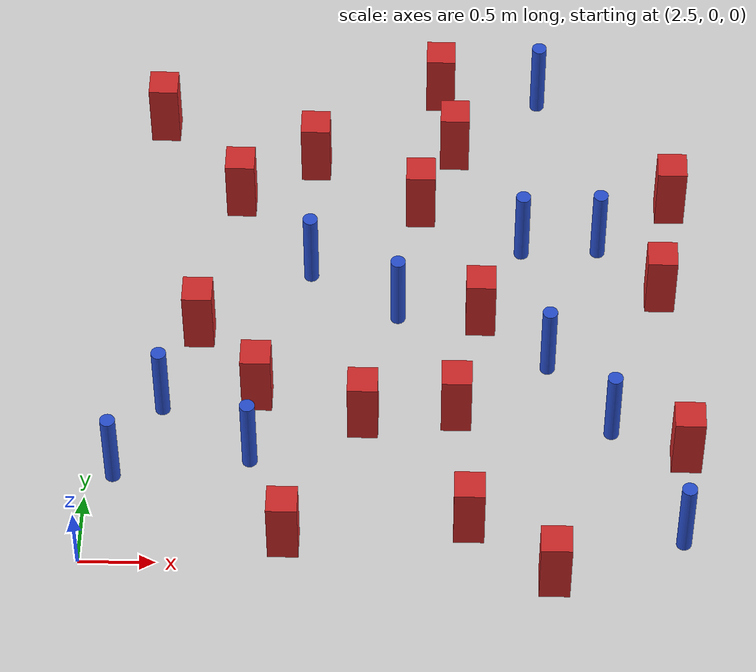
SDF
<sdf version="1.6">
 <world name="default">
  <model name="ground_plane">
   <static>1</static>
   <link name="link">
    <collision name="collision">
     <geometry><plane><normal>0 0 1</normal><size>100 100</size></plane></geometry>
     <surface><friction><ode><mu>100</mu><mu2>50</mu2></ode></friction></surface>
    </collision>
    <visual name="visual">
     <cast_shadows>0</cast_shadows>
     <geometry><plane><normal>0 0 1</normal><size>100 100</size></plane></geometry>
     <material>
      <ambient>1.0 1.0 1.0 1.0</ambient>
      <diffuse>0.8 0.8 0.8 1.0</diffuse>
      <specular>0.01 0.01 0.01 1.000000</specular>
     </material>
    </visual>
   </link>
  </model>
  <model name="square_post_obstacle10">
   <static>true</static>
   <pose>6.42466675228 0.901377303321 1.91545236811e-07 -7.35059704564e-06 1.12565212e-07 2.39332434364e-05</pose>
   <link name="link">
    <pose>0 0 0.25 0 -0 0</pose>
    <inertial>
     <mass>100</mass>
     <inertia>
      <ixx>0.166667</ixx>
      <ixy>0</ixy>
      <ixz>0</ixz>
      <iyy>0.166667</iyy>
      <iyz>0</iyz>
      <izz>0.166667</izz>
     </inertia>
    </inertial>
    <collision name="collision"><geometry><box><size>.2 .2 .5</size></box></geometry></collision>
    <visual name="visual">
     <geometry><box><size>.2 .2 .5</size></box></geometry>
     <material>
      <script><name>Gazebo/Red</name><uri>file://media/materials/scripts/gazebo.material</uri></script>
     </material>
    </visual>
   </link>
  </model>
  <model name="square_post_obstacle14">
   <static>true</static>
   <pose>4.64269038231 2.97652837888 1.91545236811e-07 -7.35059704564e-06 1.12565212e-07 2.39332434364e-05</pose>
   <link name="link">
    <pose>0 0 0.25 0 -0 0</pose>
    <inertial>
     <mass>100</mass>
     <inertia>
      <ixx>0.166667</ixx>
      <ixy>0</ixy>
      <ixz>0</ixz>
      <iyy>0.166667</iyy>
      <iyz>0</iyz>
      <izz>0.166667</izz>
     </inertia>
    </inertial>
    <collision name="collision"><geometry><box><size>.2 .2 .5</size></box></geometry></collision>
    <visual name="visual">
     <geometry><box><size>.2 .2 .5</size></box></geometry>
     <material>
      <script><name>Gazebo/Red</name><uri>file://media/materials/scripts/gazebo.material</uri></script>
     </material>
    </visual>
   </link>
  </model>
  <model name="square_post_obstacle21">
   <static>true</static>
   <pose>5.06499825312 2.02042992541 1.91545236811e-07 -7.35059704564e-06 1.12565212e-07 2.39332434364e-05</pose>
   <link name="link">
    <pose>0 0 0.25 0 -0 0</pose>
    <inertial>
     <mass>100</mass>
     <inertia>
      <ixx>0.166667</ixx>
      <ixy>0</ixy>
      <ixz>0</ixz>
      <iyy>0.166667</iyy>
      <iyz>0</iyz>
      <izz>0.166667</izz>
     </inertia>
    </inertial>
    <collision name="collision"><geometry><box><size>.2 .2 .5</size></box></geometry></collision>
    <visual name="visual">
     <geometry><box><size>.2 .2 .5</size></box></geometry>
     <material>
      <script><name>Gazebo/Red</name><uri>file://media/materials/scripts/gazebo.material</uri></script>
     </material>
    </visual>
   </link>
  </model>
  <model name="square_post_obstacle29">
   <static>true</static>
   <pose>3.81314201577 0.163402459271 1.91545236811e-07 -7.35059704564e-06 1.12565212e-07 2.39332434364e-05</pose>
   <link name="link">
    <pose>0 0 0.25 0 -0 0</pose>
    <inertial>
     <mass>100</mass>
     <inertia>
      <ixx>0.166667</ixx>
      <ixy>0</ixy>
      <ixz>0</ixz>
      <iyy>0.166667</iyy>
      <iyz>0</iyz>
      <izz>0.166667</izz>
     </inertia>
    </inertial>
    <collision name="collision"><geometry><box><size>.2 .2 .5</size></box></geometry></collision>
    <visual name="visual">
     <geometry><box><size>.2 .2 .5</size></box></geometry>
     <material>
      <script><name>Gazebo/Red</name><uri>file://media/materials/scripts/gazebo.material</uri></script>
     </material>
    </visual>
   </link>
  </model>
  <model name="pole_obstacle37">
   <static>true</static>
   <pose>5.93893864169 1.10875900663 7.38925637345e-09 -8.471706928e-08 1.24976765134e-08 -1.74513093015e-07</pose>
   <link name="link">
    <pose>0 0 0.3 0 -0 0</pose>
    <inertial>
     <mass>1</mass>
     <inertia><ixx>0.145833</ixx><ixy>0</ixy><ixz>0</ixz><iyy>0.145833</iyy><iyz>0</iyz><izz>0.125</izz></inertia>
    </inertial>
    <collision name="collision">
     <geometry><cylinder><radius>0.05</radius><length>.6</length></cylinder></geometry>
    </collision>
    <visual name="visual">
     <geometry><cylinder><radius>0.05</radius><length>.6</length></cylinder></geometry>
     <material>
      <script><name>Gazebo/Blue</name><uri>file://media/materials/scripts/gazebo.material</uri></script>
     </material>
    </visual>
   </link>
  </model>
  <model name="pole_obstacle38">
   <static>true</static>
   <pose>5.45187543839 4.03479541859 7.38925637345e-09 -8.47170692797e-08 1.24976764805e-08 -1.74513093031e-07</pose>
   <link name="link">
    <pose>0 0 0.3 0 -0 0</pose>
    <inertial>
     <mass>1</mass>
     <inertia><ixx>0.145833</ixx><ixy>0</ixy><ixz>0</ixz><iyy>0.145833</iyy><iyz>0</iyz><izz>0.125</izz></inertia>
    </inertial>
    <collision name="collision">
     <geometry><cylinder><radius>0.05</radius><length>.6</length></cylinder></geometry>
    </collision>
    <visual name="visual">
     <geometry><cylinder><radius>0.05</radius><length>.6</length></cylinder></geometry>
     <material>
      <script><name>Gazebo/Blue</name><uri>file://media/materials/scripts/gazebo.material</uri></script>
     </material>
    </visual>
   </link>
  </model>
  <model name="square_post_obstacle54">
   <static>true</static>
   <pose>3.90357703714 3.39285576708 1.91545236811e-07 -7.35059704564e-06 1.12565212e-07 2.39332434364e-05</pose>
   <link name="link">
    <pose>0 0 0.25 0 -0 0</pose>
    <inertial>
     <mass>100</mass>
     <inertia>
      <ixx>0.166667</ixx>
      <ixy>0</ixy>
      <ixz>0</ixz>
      <iyy>0.166667</iyy>
      <iyz>0</iyz>
      <izz>0.166667</izz>
     </inertia>
    </inertial>
    <collision name="collision"><geometry><box><size>.2 .2 .5</size></box></geometry></collision>
    <visual name="visual">
     <geometry><box><size>.2 .2 .5</size></box></geometry>
     <material>
      <script><name>Gazebo/Red</name><uri>file://media/materials/scripts/gazebo.material</uri></script>
     </material>
    </visual>
   </link>
  </model>
  <model name="square_post_obstacle55">
   <static>true</static>
   <pose>3.17290974705 1.87367099776 1.91545236811e-07 -7.35059704564e-06 1.12565212e-07 2.39332434364e-05</pose>
   <link name="link">
    <pose>0 0 0.25 0 -0 0</pose>
    <inertial>
     <mass>100</mass>
     <inertia>
      <ixx>0.166667</ixx>
      <ixy>0</ixy>
      <ixz>0</ixz>
      <iyy>0.166667</iyy>
      <iyz>0</iyz>
      <izz>0.166667</izz>
     </inertia>
    </inertial>
    <collision name="collision"><geometry><box><size>.2 .2 .5</size></box></geometry></collision>
    <visual name="visual">
     <geometry><box><size>.2 .2 .5</size></box></geometry>
     <material>
      <script><name>Gazebo/Red</name><uri>file://media/materials/scripts/gazebo.material</uri></script>
     </material>
    </visual>
   </link>
  </model>
  <model name="square_post_obstacle74">
   <static>true</static>
   <pose>6.28084248907 2.25597483053 1.91545236811e-07 -7.35059704564e-06 1.12565212e-07 2.39332434364e-05</pose>
   <link name="link">
    <pose>0 0 0.25 0 -0 0</pose>
    <inertial>
     <mass>100</mass>
     <inertia>
      <ixx>0.166667</ixx>
      <ixy>0</ixy>
      <ixz>0</ixz>
      <iyy>0.166667</iyy>
      <iyz>0</iyz>
      <izz>0.166667</izz>
     </inertia>
    </inertial>
    <collision name="collision"><geometry><box><size>.2 .2 .5</size></box></geometry></collision>
    <visual name="visual">
     <geometry><box><size>.2 .2 .5</size></box></geometry>
     <material>
      <script><name>Gazebo/Red</name><uri>file://media/materials/scripts/gazebo.material</uri></script>
     </material>
    </visual>
   </link>
  </model>
  <model name="pole_obstacle77">
   <static>true</static>
   <pose>3.90565426814 2.41565411377 7.38925637345e-09 -8.47170692798e-08 1.24976764939e-08 -1.74513093025e-07</pose>
   <link name="link">
    <pose>0 0 0.3 0 -0 0</pose>
    <inertial>
     <mass>1</mass>
     <inertia><ixx>0.145833</ixx><ixy>0</ixy><ixz>0</ixz><iyy>0.145833</iyy><iyz>0</iyz><izz>0.125</izz></inertia>
    </inertial>
    <collision name="collision">
     <geometry><cylinder><radius>0.05</radius><length>.6</length></cylinder></geometry>
    </collision>
    <visual name="visual">
     <geometry><cylinder><radius>0.05</radius><length>.6</length></cylinder></geometry>
     <material>
      <script><name>Gazebo/Blue</name><uri>file://media/materials/scripts/gazebo.material</uri></script>
     </material>
    </visual>
   </link>
  </model>
  <model name="pole_obstacle86">
   <static>true</static>
   <pose>6.39355051363 0.230254382399 7.38925637345e-09 -8.471706928e-08 1.24976765136e-08 -1.74513093014e-07</pose>
   <link name="link">
    <pose>0 0 0.3 0 -0 0</pose>
    <inertial>
     <mass>1</mass>
     <inertia><ixx>0.145833</ixx><ixy>0</ixy><ixz>0</ixz><iyy>0.145833</iyy><iyz>0</iyz><izz>0.125</izz></inertia>
    </inertial>
    <collision name="collision">
     <geometry><cylinder><radius>0.05</radius><length>.6</length></cylinder></geometry>
    </collision>
    <visual name="visual">
     <geometry><cylinder><radius>0.05</radius><length>.6</length></cylinder></geometry>
     <material>
      <script><name>Gazebo/Blue</name><uri>file://media/materials/scripts/gazebo.material</uri></script>
     </material>
    </visual>
   </link>
  </model>
  <model name="square_post_obstacle81">
   <static>true</static>
   <pose>5.00570916769 0.306361653262 1.91545236811e-07 -7.35059704564e-06 1.12565212e-07 2.39332434364e-05</pose>
   <link name="link">
    <pose>0 0 0.25 0 -0 0</pose>
    <inertial>
     <mass>100</mass>
     <inertia>
      <ixx>0.166667</ixx>
      <ixy>0</ixy>
      <ixz>0</ixz>
      <iyy>0.166667</iyy>
      <iyz>0</iyz>
      <izz>0.166667</izz>
     </inertia>
    </inertial>
    <collision name="collision"><geometry><box><size>.2 .2 .5</size></box></geometry></collision>
    <visual name="visual">
     <geometry><box><size>.2 .2 .5</size></box></geometry>
     <material>
      <script><name>Gazebo/Red</name><uri>file://media/materials/scripts/gazebo.material</uri></script>
     </material>
    </visual>
   </link>
  </model>
  <model name="square_post_obstacle90">
   <static>true</static>
   <pose>6.36619432019 3.05156068326 1.91545236811e-07 -7.35059704564e-06 1.12565212e-07 2.39332434364e-05</pose>
   <link name="link">
    <pose>0 0 0.25 0 -0 0</pose>
    <inertial>
     <mass>100</mass>
     <inertia>
      <ixx>0.166667</ixx>
      <ixy>0</ixy>
      <ixz>0</ixz>
      <iyy>0.166667</iyy>
      <iyz>0</iyz>
      <izz>0.166667</izz>
     </inertia>
    </inertial>
    <collision name="collision"><geometry><box><size>.2 .2 .5</size></box></geometry></collision>
    <visual name="visual">
     <geometry><box><size>.2 .2 .5</size></box></geometry>
     <material>
      <script><name>Gazebo/Red</name><uri>file://media/materials/scripts/gazebo.material</uri></script>
     </material>
    </visual>
   </link>
  </model>
  <model name="square_post_obstacle95">
   <static>true</static>
   <pose>5.55613628014 -0.100720146479 1.91545236811e-07 -7.35059704564e-06 1.12565212e-07 2.39332434364e-05</pose>
   <link name="link">
    <pose>0 0 0.25 0 -0 0</pose>
    <inertial>
     <mass>100</mass>
     <inertia>
      <ixx>0.166667</ixx>
      <ixy>0</ixy>
      <ixz>0</ixz>
      <iyy>0.166667</iyy>
      <iyz>0</iyz>
      <izz>0.166667</izz>
     </inertia>
    </inertial>
    <collision name="collision"><geometry><box><size>.2 .2 .5</size></box></geometry></collision>
    <visual name="visual">
     <geometry><box><size>.2 .2 .5</size></box></geometry>
     <material>
      <script><name>Gazebo/Red</name><uri>file://media/materials/scripts/gazebo.material</uri></script>
     </material>
    </visual>
   </link>
  </model>
  <model name="pole_obstacle133">
   <static>true</static>
   <pose>3.56248180845 0.825413103068 7.38925637345e-09 -8.471706928e-08 1.24976765177e-08 -1.74513093012e-07</pose>
   <link name="link">
    <pose>0 0 0.3 0 -0 0</pose>
    <inertial>
     <mass>1</mass>
     <inertia><ixx>0.145833</ixx><ixy>0</ixy><ixz>0</ixz><iyy>0.145833</iyy><iyz>0</iyz><izz>0.125</izz></inertia>
    </inertial>
    <collision name="collision">
     <geometry><cylinder><radius>0.05</radius><length>.6</length></cylinder></geometry>
    </collision>
    <visual name="visual">
     <geometry><cylinder><radius>0.05</radius><length>.6</length></cylinder></geometry>
     <material>
      <script><name>Gazebo/Blue</name><uri>file://media/materials/scripts/gazebo.material</uri></script>
     </material>
    </visual>
   </link>
  </model>
  <model name="square_post_obstacle130">
   <static>true</static>
   <pose>2.82527806838 3.74008543943 1.91545236811e-07 -7.35059704564e-06 1.12565212e-07 2.39332434364e-05</pose>
   <link name="link">
    <pose>0 0 0.25 0 -0 0</pose>
    <inertial>
     <mass>100</mass>
     <inertia>
      <ixx>0.166667</ixx>
      <ixy>0</ixy>
      <ixz>0</ixz>
      <iyy>0.166667</iyy>
      <iyz>0</iyz>
      <izz>0.166667</izz>
     </inertia>
    </inertial>
    <collision name="collision"><geometry><box><size>.2 .2 .5</size></box></geometry></collision>
    <visual name="visual">
     <geometry><box><size>.2 .2 .5</size></box></geometry>
     <material>
      <script><name>Gazebo/Red</name><uri>file://media/materials/scripts/gazebo.material</uri></script>
     </material>
    </visual>
   </link>
  </model>
  <model name="pole_obstacle150">
   <static>true</static>
   <pose>5.8664025136 2.67419437574 7.38925637345e-09 -8.47170692798e-08 1.24976764937e-08 -1.74513093023e-07</pose>
   <link name="link">
    <pose>0 0 0.3 0 -0 0</pose>
    <inertial>
     <mass>1</mass>
     <inertia><ixx>0.145833</ixx><ixy>0</ixy><ixz>0</ixz><iyy>0.145833</iyy><iyz>0</iyz><izz>0.125</izz></inertia>
    </inertial>
    <collision name="collision">
     <geometry><cylinder><radius>0.05</radius><length>.6</length></cylinder></geometry>
    </collision>
    <visual name="visual">
     <geometry><cylinder><radius>0.05</radius><length>.6</length></cylinder></geometry>
     <material>
      <script><name>Gazebo/Blue</name><uri>file://media/materials/scripts/gazebo.material</uri></script>
     </material>
    </visual>
   </link>
  </model>
  <model name="square_post_obstacle151">
   <static>true</static>
   <pose>4.91196361464 1.2076903404 1.91545236811e-07 -7.35059704564e-06 1.12565212e-07 2.39332434364e-05</pose>
   <link name="link">
    <pose>0 0 0.25 0 -0 0</pose>
    <inertial>
     <mass>100</mass>
     <inertia>
      <ixx>0.166667</ixx>
      <ixy>0</ixy>
      <ixz>0</ixz>
      <iyy>0.166667</iyy>
      <iyz>0</iyz>
      <izz>0.166667</izz>
     </inertia>
    </inertial>
    <collision name="collision"><geometry><box><size>.2 .2 .5</size></box></geometry></collision>
    <visual name="visual">
     <geometry><box><size>.2 .2 .5</size></box></geometry>
     <material>
      <script><name>Gazebo/Red</name><uri>file://media/materials/scripts/gazebo.material</uri></script>
     </material>
    </visual>
   </link>
  </model>
  <model name="square_post_obstacle162">
   <static>true</static>
   <pose>4.76338463924 4.07415068573 1.91545236811e-07 -7.35059704564e-06 1.12565212e-07 2.39332434364e-05</pose>
   <link name="link">
    <pose>0 0 0.25 0 -0 0</pose>
    <inertial>
     <mass>100</mass>
     <inertia>
      <ixx>0.166667</ixx>
      <ixy>0</ixy>
      <ixz>0</ixz>
      <iyy>0.166667</iyy>
      <iyz>0</iyz>
      <izz>0.166667</izz>
     </inertia>
    </inertial>
    <collision name="collision"><geometry><box><size>.2 .2 .5</size></box></geometry></collision>
    <visual name="visual">
     <geometry><box><size>.2 .2 .5</size></box></geometry>
     <material>
      <script><name>Gazebo/Red</name><uri>file://media/materials/scripts/gazebo.material</uri></script>
     </material>
    </visual>
   </link>
  </model>
  <model name="pole_obstacle172">
   <static>true</static>
   <pose>2.67249068591 0.684325978337 7.38925637345e-09 -8.471706928e-08 1.24976765177e-08 -1.74513093012e-07</pose>
   <link name="link">
    <pose>0 0 0.3 0 -0 0</pose>
    <inertial>
     <mass>1</mass>
     <inertia><ixx>0.145833</ixx><ixy>0</ixy><ixz>0</ixz><iyy>0.145833</iyy><iyz>0</iyz><izz>0.125</izz></inertia>
    </inertial>
    <collision name="collision">
     <geometry><cylinder><radius>0.05</radius><length>.6</length></cylinder></geometry>
    </collision>
    <visual name="visual">
     <geometry><cylinder><radius>0.05</radius><length>.6</length></cylinder></geometry>
     <material>
      <script><name>Gazebo/Blue</name><uri>file://media/materials/scripts/gazebo.material</uri></script>
     </material>
    </visual>
   </link>
  </model>
  <model name="pole_obstacle177">
   <static>true</static>
   <pose>2.9628270445 1.24052259729 7.38925637345e-09 -8.471706928e-08 1.24976765152e-08 -1.74513093012e-07</pose>
   <link name="link">
    <pose>0 0 0.3 0 -0 0</pose>
    <inertial>
     <mass>1</mass>
     <inertia><ixx>0.145833</ixx><ixy>0</ixy><ixz>0</ixz><iyy>0.145833</iyy><iyz>0</iyz><izz>0.125</izz></inertia>
    </inertial>
    <collision name="collision">
     <geometry><cylinder><radius>0.05</radius><length>.6</length></cylinder></geometry>
    </collision>
    <visual name="visual">
     <geometry><cylinder><radius>0.05</radius><length>.6</length></cylinder></geometry>
     <material>
      <script><name>Gazebo/Blue</name><uri>file://media/materials/scripts/gazebo.material</uri></script>
     </material>
    </visual>
   </link>
  </model>
  <model name="square_post_obstacle188">
   <static>true</static>
   <pose>4.29708052326 1.13520165758 1.91545236811e-07 -7.35059704564e-06 1.12565212e-07 2.39332434364e-05</pose>
   <link name="link">
    <pose>0 0 0.25 0 -0 0</pose>
    <inertial>
     <mass>100</mass>
     <inertia>
      <ixx>0.166667</ixx>
      <ixy>0</ixy>
      <ixz>0</ixz>
      <iyy>0.166667</iyy>
      <iyz>0</iyz>
      <izz>0.166667</izz>
     </inertia>
    </inertial>
    <collision name="collision"><geometry><box><size>.2 .2 .5</size></box></geometry></collision>
    <visual name="visual">
     <geometry><box><size>.2 .2 .5</size></box></geometry>
     <material>
      <script><name>Gazebo/Red</name><uri>file://media/materials/scripts/gazebo.material</uri></script>
     </material>
    </visual>
   </link>
  </model>
  <model name="pole_obstacle202">
   <static>true</static>
   <pose>5.34216816002 2.64891271542 7.38925637345e-09 -8.47170692798e-08 1.24976764937e-08 -1.74513093023e-07</pose>
   <link name="link">
    <pose>0 0 0.3 0 -0 0</pose>
    <inertial>
     <mass>1</mass>
     <inertia><ixx>0.145833</ixx><ixy>0</ixy><ixz>0</ixz><iyy>0.145833</iyy><iyz>0</iyz><izz>0.125</izz></inertia>
    </inertial>
    <collision name="collision">
     <geometry><cylinder><radius>0.05</radius><length>.6</length></cylinder></geometry>
    </collision>
    <visual name="visual">
     <geometry><cylinder><radius>0.05</radius><length>.6</length></cylinder></geometry>
     <material>
      <script><name>Gazebo/Blue</name><uri>file://media/materials/scripts/gazebo.material</uri></script>
     </material>
    </visual>
   </link>
  </model>
  <model name="square_post_obstacle199">
   <static>true</static>
   <pose>3.39756249078 3.04604917642 1.91545236811e-07 -7.35059704564e-06 1.12565212e-07 2.39332434364e-05</pose>
   <link name="link">
    <pose>0 0 0.25 0 -0 0</pose>
    <inertial>
     <mass>100</mass>
     <inertia>
      <ixx>0.166667</ixx>
      <ixy>0</ixy>
      <ixz>0</ixz>
      <iyy>0.166667</iyy>
      <iyz>0</iyz>
      <izz>0.166667</izz>
     </inertia>
    </inertial>
    <collision name="collision"><geometry><box><size>.2 .2 .5</size></box></geometry></collision>
    <visual name="visual">
     <geometry><box><size>.2 .2 .5</size></box></geometry>
     <material>
      <script><name>Gazebo/Red</name><uri>file://media/materials/scripts/gazebo.material</uri></script>
     </material>
    </visual>
   </link>
  </model>
  <model name="pole_obstacle205">
   <static>true</static>
   <pose>4.506308492 2.05803581855 7.38925637345e-09 -8.47170692798e-08 1.24976764937e-08 -1.74513093023e-07</pose>
   <link name="link">
    <pose>0 0 0.3 0 -0 0</pose>
    <inertial>
     <mass>1</mass>
     <inertia><ixx>0.145833</ixx><ixy>0</ixy><ixz>0</ixz><iyy>0.145833</iyy><iyz>0</iyz><izz>0.125</izz></inertia>
    </inertial>
    <collision name="collision">
     <geometry><cylinder><radius>0.05</radius><length>.6</length></cylinder></geometry>
    </collision>
    <visual name="visual">
     <geometry><cylinder><radius>0.05</radius><length>.6</length></cylinder></geometry>
     <material>
      <script><name>Gazebo/Blue</name><uri>file://media/materials/scripts/gazebo.material</uri></script>
     </material>
    </visual>
   </link>
  </model>
  <model name="pole_obstacle223">
   <static>true</static>
   <pose>5.51883540605 1.64580820614 7.38925637345e-09 -8.471706928e-08 1.24976765134e-08 -1.74513093015e-07</pose>
   <link name="link">
    <pose>0 0 0.3 0 -0 0</pose>
    <inertial>
     <mass>1</mass>
     <inertia><ixx>0.145833</ixx><ixy>0</ixy><ixz>0</ixz><iyy>0.145833</iyy><iyz>0</iyz><izz>0.125</izz></inertia>
    </inertial>
    <collision name="collision">
     <geometry><cylinder><radius>0.05</radius><length>.6</length></cylinder></geometry>
    </collision>
    <visual name="visual">
     <geometry><cylinder><radius>0.05</radius><length>.6</length></cylinder></geometry>
     <material>
      <script><name>Gazebo/Blue</name><uri>file://media/materials/scripts/gazebo.material</uri></script>
     </material>
    </visual>
   </link>
  </model>
  <model name="square_post_obstacle211">
   <static>true</static>
   <pose>3.5874899648 1.34662998808 1.91545236811e-07 -7.35059704564e-06 1.12565212e-07 2.39332434364e-05</pose>
   <link name="link">
    <pose>0 0 0.25 0 -0 0</pose>
    <inertial>
     <mass>100</mass>
     <inertia>
      <ixx>0.166667</ixx>
      <ixy>0</ixy>
      <ixz>0</ixz>
      <iyy>0.166667</iyy>
      <iyz>0</iyz>
      <izz>0.166667</izz>
     </inertia>
    </inertial>
    <collision name="collision"><geometry><box><size>.2 .2 .5</size></box></geometry></collision>
    <visual name="visual">
     <geometry><box><size>.2 .2 .5</size></box></geometry>
     <material>
      <script><name>Gazebo/Red</name><uri>file://media/materials/scripts/gazebo.material</uri></script>
     </material>
    </visual>
   </link>
  </model>
  <model name="square_post_obstacle214">
   <static>true</static>
   <pose>4.8699199648 3.51496998808 1.91545236811e-07 -7.35059704564e-06 1.12565212e-07 2.39332434364e-05</pose>
   <link name="link">
    <pose>0 0 0.25 0 -0 0</pose>
    <inertial>
     <mass>100</mass>
     <inertia>
      <ixx>0.166667</ixx>
      <ixy>0</ixy>
      <ixz>0</ixz>
      <iyy>0.166667</iyy>
      <iyz>0</iyz>
      <izz>0.166667</izz>
     </inertia>
    </inertial>
    <collision name="collision"><geometry><box><size>.2 .2 .5</size></box></geometry></collision>
    <visual name="visual">
     <geometry><box><size>.2 .2 .5</size></box></geometry>
     <material>
      <script><name>Gazebo/Red</name><uri>file://media/materials/scripts/gazebo.material</uri></script>
     </material>
    </visual>
   </link>
  </model>
 </world>
</sdf>
